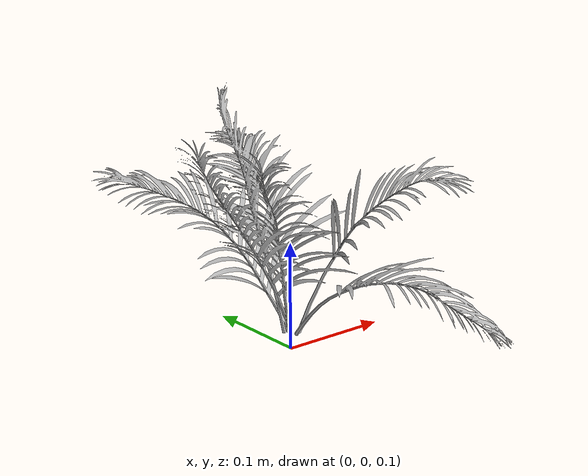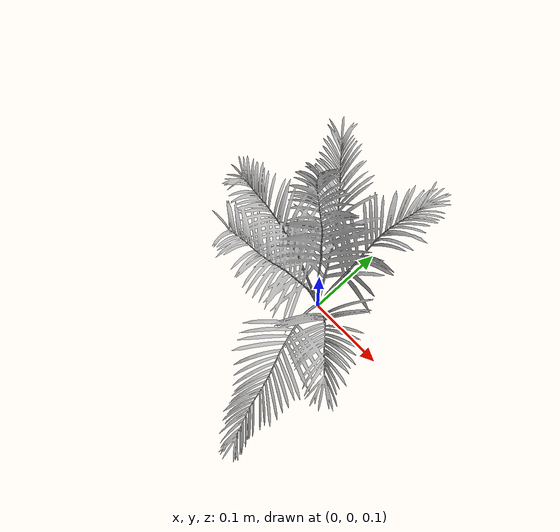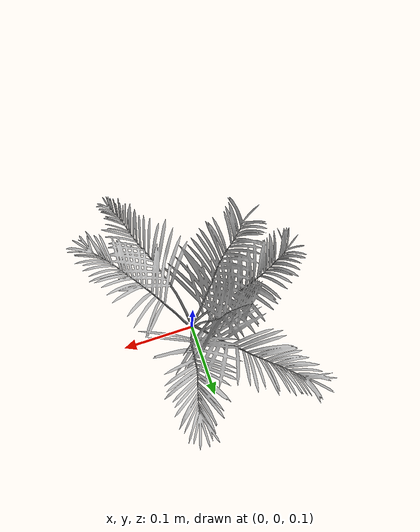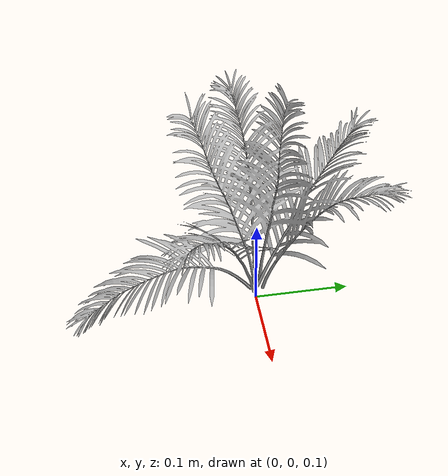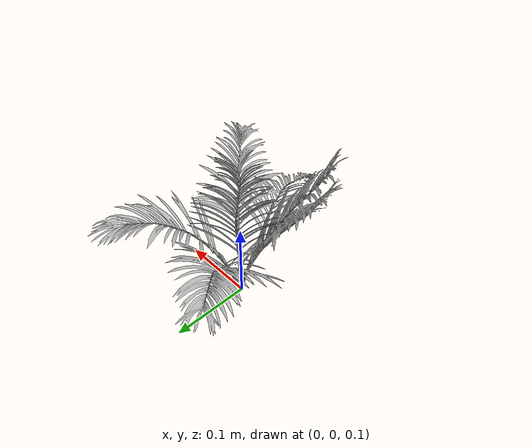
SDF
<?xml version="1.0" ?>
<sdf version="1.5">
  <model name="CropWithWeed">
    <link name="link">
      <pose>0 0 0.115 0 0 0</pose>
      <inertial>
        <mass>0.390</mass>
        <inertia>
          <ixx>0.00058</ixx>
          <ixy>0</ixy>
          <ixz>0</ixz>
          <iyy>0.00058</iyy>
          <iyz>0</iyz>
          <izz>0.00019</izz>
        </inertia>
      </inertial>
      <collision name="collision">
        <geometry>
          <mesh>
            <uri>model://CropWithWeed/meshes/palm.dae</uri>
            <scale>1.5 1.5 1.5</scale>
          </mesh>
        </geometry>
      </collision>
      <visual name="visual">
        <geometry>
          <mesh>
            <uri>model://CropWithWeed/meshes/palm.dae</uri>
            <scale>1.5 1.5 1.5</scale>
          </mesh>
        </geometry>
        <material>
          <script>
            <uri>model://CropWithWeed/materials/scripts</uri>
            <uri>model://CropWithWeed/materials/textures</uri>
            <name>CropWithWeed/Diffuse</name>
          </script>
        </material>
      </visual>
    </link>
  </model>
</sdf>
